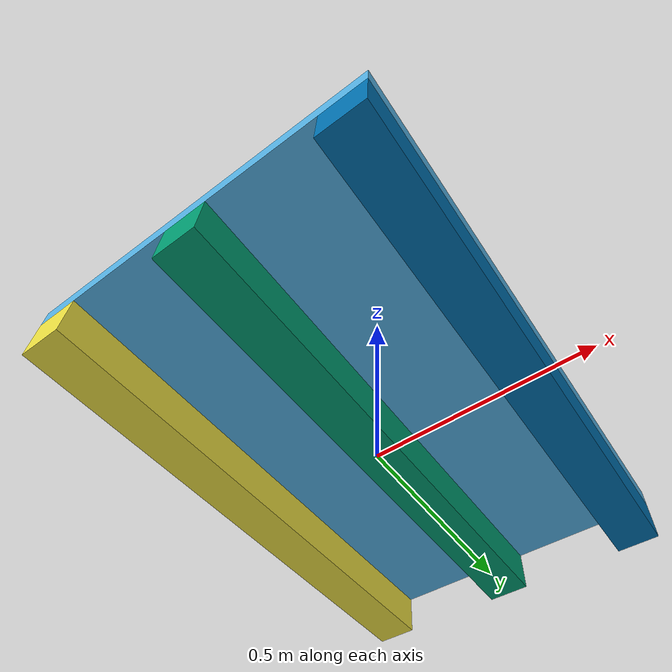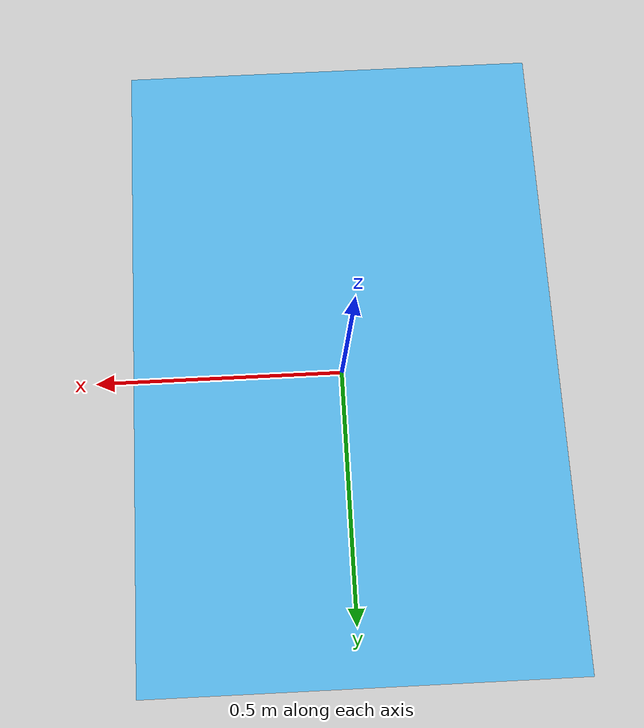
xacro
<?xml version="1.0" ?>
<robot name="pallet" xmlns:xacro="http://www.ros.org/wiki/xacro">

  <xacro:include filename="$(find hr_recycler_description)/urdf/inertia.urdf.xacro" />

  <xacro:arg name="prefix" default="pallet_"/>
  <xacro:property name="prefix" value="$(arg prefix)" />

  <link name="${prefix}base_link">
  </link>

  <joint name="${prefix}cover_joint" type="fixed">
    <origin rpy="0 0 0" xyz="0 0 0.122"/>
    <parent link="${prefix}base_link"/>
    <child link="${prefix}cover_link"/>
  </joint>
  <link name="${prefix}cover_link">
    <inertial>
      <mass value="5" />
      <origin xyz="0 0 0" />
      <!-- yes, axis in solid_cuboid_inertia are changed, w relates to X axis, d to Z axis, and h to Y axis -->
      <!-- Keep this comment -->
      <solid_cuboid_inertia m="5" h="0.8" d="0.044" w="1.2"/>
    </inertial>
    <visual>
      <origin rpy="0 0 0" xyz="0 0 0"/>
      <geometry>
        <box size="0.8 1.2 0.044"/>
      </geometry>
    </visual>
    <collision>
      <origin rpy="0 0 0" xyz="0 0 0"/>
      <geometry>
        <box size="0.8 1.2 0.044"/>
      </geometry>
      <surface>
        <friction>
          <ode>
            <mu>100000</mu>
            <mu2>50000</mu2>
          </ode>
        </friction>
      </surface>
    </collision>
  </link>

  <joint name="${prefix}central_foot_joint" type="fixed">
    <origin rpy="0 0 0" xyz="0.0 0 0.05"/>
    <parent link="${prefix}base_link"/>
    <child link="${prefix}central_foot_link"/>
  </joint>
  <link name="${prefix}central_foot_link">
    <inertial>
      <mass value="1" />
      <origin xyz="0 0 0" />
      <!-- yes, axis in solid_cuboid_inertia are changed, w relates to X axis, d to Z axis, and h to Y axis -->
      <!-- Keep this comment -->
      <solid_cuboid_inertia m="1" h="0.1" d="0.1" w="1.2"/>
    </inertial>

    <visual>
      <origin rpy="0 0 0" xyz="0 0 0"/>
      <geometry>
        <box size="0.1 1.2 0.1"/>
      </geometry>
    </visual>
    <collision>
      <origin rpy="0 0 0" xyz="0 0 0"/>
      <geometry>
        <box size="0.1 1.2 0.1"/>
      </geometry>
    </collision>
  </link>

  <joint name="${prefix}left_foot_joint" type="fixed">
    <origin rpy="0 0 0" xyz="-0.35 0 0.05"/>
    <parent link="${prefix}base_link"/>
    <child link="${prefix}left_foot_link"/>
  </joint>
  <link name="${prefix}left_foot_link">
    <inertial>
      <mass value="1" />
      <origin xyz="0 0 0" />
      <!-- yes, axis in solid_cuboid_inertia are changed, w relates to X axis, d to Z axis, and h to Y axis -->
      <!-- Keep this comment -->
      <solid_cuboid_inertia m="1" h="0.1" d="0.1" w="1.2"/>
    </inertial>
    <visual>
      <origin rpy="0 0 0" xyz="0 0 0"/>
      <geometry>
        <box size="0.1 1.2 0.1"/>
      </geometry>
    </visual>
    <collision>
      <origin rpy="0 0 0" xyz="0 0 0"/>
      <geometry>
        <box size="0.1 1.2 0.1"/>
      </geometry>
    </collision>
  </link>

  <joint name="${prefix}right_foot_joint" type="fixed">
    <origin rpy="0 0 0" xyz="0.35 0 0.05"/>
    <parent link="${prefix}base_link"/>
    <child link="${prefix}right_foot_link"/>
  </joint>
  <link name="${prefix}right_foot_link">
    <inertial>
      <mass value="1" />
      <origin xyz="0 0 0" />
      <!-- yes, axis in solid_cuboid_inertia are changed, w relates to X axis, d to Z axis, and h to Y axis -->
      <!-- Keep this comment -->
      <solid_cuboid_inertia m="1" h="0.1" d="0.1" w="1.2"/>
    </inertial>

    <visual>
      <origin rpy="0 0 0" xyz="0 0 0"/>
      <geometry>
        <box size="0.1 1.2 0.1"/>
      </geometry>
    </visual>
    <collision>
      <origin rpy="0 0 0" xyz="0 0 0"/>
      <geometry>
        <box size="0.1 1.2 0.1"/>
      </geometry>
    </collision>
  </link>

</robot>

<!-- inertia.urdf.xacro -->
<robot xmlns:xacro="http://www.ros.org/wiki/xacro">
  <!-- source en.wikipedia.org/wiki/List_of_moments_of_inertia-->

  <!-- TODO Solid sphere of radius r and mass m-->
  <xacro:macro name="solid_sphere_inertia" params="m r">
    <inertia  ixx="${(2*r*r*m)/5}" ixy = "0" ixz = "0"
              iyy="${(2*r*r*m)/5}" iyz = "0"
              izz="${(2*r*r*m)/5}"
     />
  </xacro:macro>

  <!-- TODO Hollow sphere of radius r and mass m-->
  <xacro:macro name="solid_sphere_inertia" params="m r">
    <inertia  ixx="${(2*r*r*m)/3}" ixy = "0" ixz = "0"
              iyy="${(2*r*r*m)/3}" iyz = "0"
              izz="${(2*r*r*m)/3}"
     />
  </xacro:macro>

  <!-- TODO Solid ellipsoid of semi-axes a, b, c and mass m-->
  <xacro:macro name="ellipsoid_semi_axes_inertia" params="a b c m r">
    <inertia  ixx="${(m*(b*b+c*c))/5}" ixy = "0" ixz = "0"
              iyy="${(m*(a*a+c*c))/5}" iyz = "0"
              izz="${(m*(a*a+b*b))/5}"
     />
  </xacro:macro>

  <!-- TODO Right circular cone with radius r, height h and mass m, about the apex -->
  <xacro:macro name="right_circular_cone_inertia" params="m r h">
    <inertia  ixx="${((3*m*(h*h))/5)+((3*m*(r*r))/20)}" ixy = "0" ixz = "0"
              iyy="${((3*m*(h*h))/5)+((3*m*(r*r))/20)}" iyz = "0"
              izz="${(3*m*(r*r))/10}"
     />
  </xacro:macro>

  <!-- TODO Solid cuboid of width w, height h, depth d, and mass m -->
  <!-- yes, axis in solid_cuboid_inertia are changed, w relates to X axis, d to Z axis, and h to Y axis -->
  <!-- Keep this comment -->
  <xacro:macro name="solid_cuboid_inertia" params="m h d w">
    <inertia  ixx="${(m*(h*h+d*d))/12}" ixy = "0" ixz = "0"
              iyy="${(m*(w*w+d*d))/12}" iyz = "0"
              izz="${(m*(w*w+h*h))/12}"
     />
  </xacro:macro>

  <!-- TODO Solid cylinder of radius r, height h and mass m -->
  <xacro:macro name="solid_cylinder_inertia" params="m r h">
    <inertia  ixx="${m*(3*r*r+h*h)/12}" ixy = "0" ixz = "0"
              iyy="${m*(3*r*r+h*h)/12}" iyz = "0"
              izz="${m*r*r/2}"
     />
  </xacro:macro>

    <!-- TODO Thick-walled cylindrical tube with open ends, of inner radius r1, outer radius r2, length h and mass m -->
    <xacro:macro name="thick_walled_cylinder_inertia" params="m r1 r2 h">
    <inertia  ixx="${m*((3*(r1*r1+r2*r2))+(h*h))/12}" ixy = "0" ixz = "0"
              iyy="${m*((3*(r1*r1+r2*r2))+(h*h))/12}" iyz = "0"
              izz="${m*(r1*r1+r2*r2)/2}"
     />
  </xacro:macro>

</robot>
